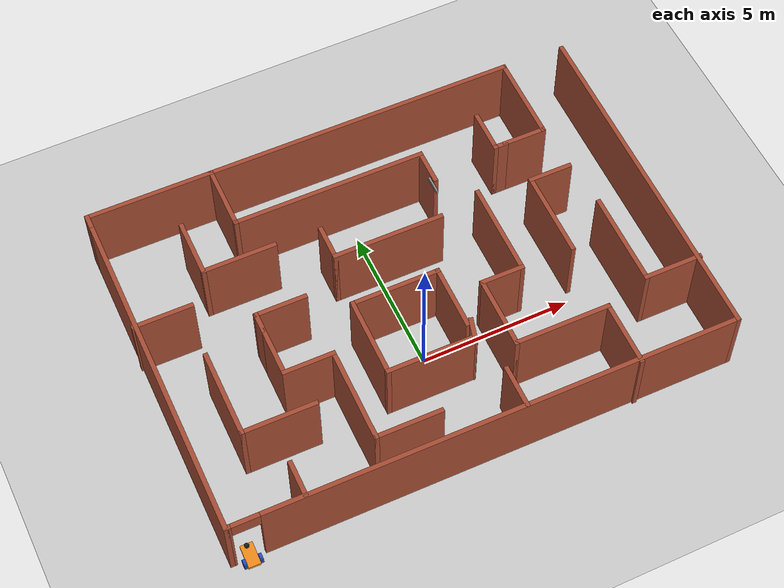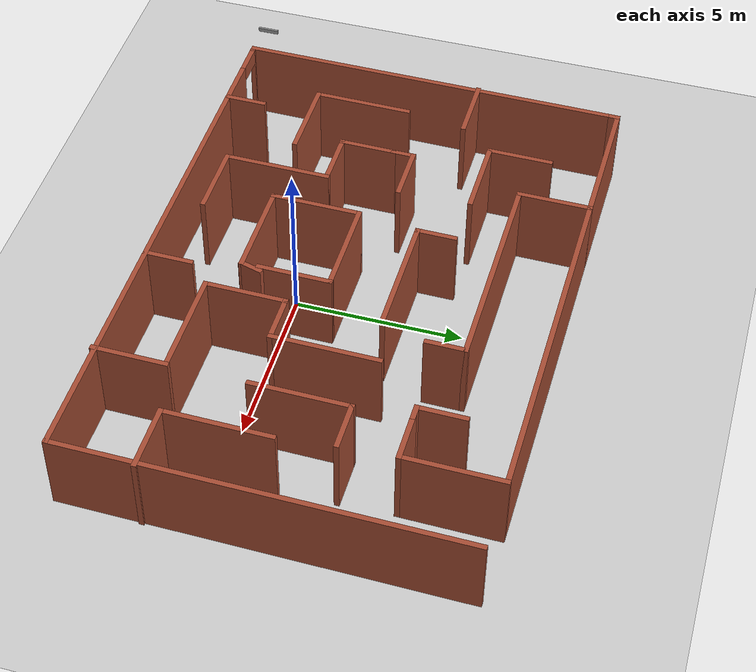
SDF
<sdf version="1.7">
 <world name="default">
  <light name="sun" type="directional">
   <pose>0 0 10 0 -0 0</pose>
   <diffuse>0.8 0.8 0.8 1</diffuse>
   <specular>0.2 0.2 0.2 1</specular>
   <attenuation>
    <range>1000</range>
    <constant>0.9</constant>
    <linear>0.01</linear>
    <quadratic>0.001</quadratic>
   </attenuation>
   <direction>-0.5 0.1 -0.9</direction>
   <spot><inner_angle>0</inner_angle><outer_angle>0</outer_angle><falloff>0</falloff></spot>
  </light>
  <model name="ground_plane">
   <static>1</static>
   <link name="link">
    <collision name="collision">
     <geometry><plane><normal>0 0 1</normal><size>100 100</size></plane></geometry>
     <surface><friction><ode><mu>100</mu><mu2>50</mu2></ode></friction></surface>
    </collision>
    <visual name="visual">
     <cast_shadows>0</cast_shadows>
     <geometry><plane><normal>0 0 1</normal><size>100 100</size></plane></geometry>
     <material>
      <script><uri>file://media/materials/scripts/gazebo.material</uri><name>Gazebo/Grey</name></script>
     </material>
    </visual>
   </link>
  </model>
  <gravity>0 0 -9.8</gravity>
  <magnetic_field>6e-06 2.3e-05 -4.2e-05</magnetic_field>
  <atmosphere type="adiabatic"/>
  <physics type="ode">
   <max_step_size>0.001</max_step_size>
   <real_time_factor>1</real_time_factor>
   <real_time_update_rate>1000</real_time_update_rate>
  </physics>
  <scene><ambient>0.4 0.4 0.4 1</ambient><background>0.7 0.7 0.7 1</background><shadows>1</shadows></scene>
  <audio><device>default</device></audio>
  <spherical_coordinates>
   <surface_model>EARTH_WGS84</surface_model>
   <latitude_deg>0</latitude_deg>
   <longitude_deg>0</longitude_deg>
   <elevation>0</elevation>
   <heading_deg>0</heading_deg>
  </spherical_coordinates>
  <model name="mazebot">
   <link name="base_footprint">
    <inertial>
     <pose>-0.16 0 0.04 0 -0 0</pose>
     <mass>2</mass>
     <inertia>
      <ixx>0.0232</ixx>
      <ixy>0</ixy>
      <ixz>0.0128</ixz>
      <iyy>0.0744</iyy>
      <iyz>0</iyz>
      <izz>0.0712</izz>
     </inertia>
    </inertial>
    <collision name="base_footprint_collision">
     <geometry><box><size>0.75 0.4 0.1</size></box></geometry>
    </collision>
    <collision name="base_footprint_fixed_joint_lump__laser_collision_1">
     <pose>-0.32 0 0.08 0 -0 3.14</pose>
     <geometry><sphere><radius>0.08</radius></sphere></geometry>
    </collision>
    <visual name="base_footprint_visual">
     <geometry><box><size>0.75 0.4 0.1</size></box></geometry>
     <material>
      <script><name>Gazebo/Orange</name><uri>file://media/materials/scripts/gazebo.material</uri></script>
     </material>
    </visual>
    <visual name="base_footprint_fixed_joint_lump__laser_visual_1">
     <pose>-0.32 0 0.08 0 -0 3.14</pose>
     <geometry><cylinder><length>0.05</length><radius>0.05</radius></cylinder></geometry>
    </visual>
    <sensor name="laser" type="ray">
     <visualize>1</visualize>
     <update_rate>40</update_rate>
     <ray>
      <scan>
       <horizontal>
        <samples>720</samples>
        <resolution>1</resolution>
        <min_angle>-1.578</min_angle>
        <max_angle>1.578</max_angle>
       </horizontal>
       <vertical><samples>1</samples><min_angle>0</min_angle><max_angle>0</max_angle></vertical>
      </scan>
      <range><min>0.1</min><max>5</max><resolution>0.1</resolution></range>
     </ray>
     <plugin name="Lidar" filename="libgazebo_ros_laser.so">
      <topicName>/scan</topicName>
      <frameName>laser</frameName>
     </plugin>
     <pose>-0.32 0 0.08 0 -0 3.14</pose>
    </sensor>
   </link>
   <joint name="caster_joint" type="revolute">
    <pose relative_to="base_footprint">-0.3 0 -0.07 0 -0 0</pose>
    <parent>base_footprint</parent>
    <child>caster</child>
    <axis>
     <xyz>0 0 1</xyz>
     <limit><lower>-1e+16</lower><upper>1e+16</upper></limit>
     <dynamics><spring_reference>0</spring_reference><spring_stiffness>0</spring_stiffness></dynamics>
    </axis>
   </joint>
   <link name="caster">
    <pose relative_to="caster_joint">0 0 0 0 -0 0</pose>
    <inertial>
     <mass>1</mass>
     <inertia><ixx>0.01</ixx><ixy>0</ixy><ixz>0</ixz><iyy>0.01</iyy><iyz>0</iyz><izz>0.01</izz></inertia>
    </inertial>
    <collision name="caster_collision"><geometry><sphere><radius>0.08</radius></sphere></geometry></collision>
    <visual name="caster_visual">
     <geometry><sphere><radius>0.08</radius></sphere></geometry>
     <material>
      <script><name>Gazebo/Black</name><uri>file://media/materials/scripts/gazebo.material</uri></script>
     </material>
    </visual>
   </link>
   <joint name="wheel_left_joint" type="revolute">
    <pose relative_to="base_footprint">0.2 -0.25 0 1.57 -0 0</pose>
    <parent>base_footprint</parent>
    <child>wheel_left_link</child>
    <axis>
     <xyz>0 0 1</xyz>
     <limit><lower>-1e+16</lower><upper>1e+16</upper></limit>
     <dynamics><spring_reference>0</spring_reference><spring_stiffness>0</spring_stiffness></dynamics>
    </axis>
   </joint>
   <link name="wheel_left_link">
    <pose relative_to="wheel_left_joint">0 0 0 0 -0 0</pose>
    <inertial>
     <mass>2</mass>
     <inertia><ixx>0.01</ixx><ixy>0</ixy><ixz>0</ixz><iyy>0.01</iyy><iyz>0</iyz><izz>0.01</izz></inertia>
    </inertial>
    <collision name="wheel_left_link_collision">
     <geometry><cylinder><length>0.1</length><radius>0.15</radius></cylinder></geometry>
    </collision>
    <visual name="wheel_left_link_visual">
     <geometry><cylinder><length>0.1</length><radius>0.15</radius></cylinder></geometry>
     <material>
      <script><name>Gazebo/Blue</name><uri>file://media/materials/scripts/gazebo.material</uri></script>
     </material>
    </visual>
   </link>
   <joint name="wheel_right_joint" type="revolute">
    <pose relative_to="base_footprint">0.2 0.25 0 1.57 -0 0</pose>
    <parent>base_footprint</parent>
    <child>wheel_right_link</child>
    <axis>
     <xyz>0 0 1</xyz>
     <limit><lower>-1e+16</lower><upper>1e+16</upper></limit>
     <dynamics><spring_reference>0</spring_reference><spring_stiffness>0</spring_stiffness></dynamics>
    </axis>
   </joint>
   <link name="wheel_right_link">
    <pose relative_to="wheel_right_joint">0 0 0 0 -0 0</pose>
    <inertial>
     <mass>2</mass>
     <inertia><ixx>0.01</ixx><ixy>0</ixy><ixz>0</ixz><iyy>0.01</iyy><iyz>0</iyz><izz>0.01</izz></inertia>
    </inertial>
    <collision name="wheel_right_link_collision">
     <geometry><cylinder><length>0.1</length><radius>0.15</radius></cylinder></geometry>
    </collision>
    <visual name="wheel_right_link_visual">
     <geometry><cylinder><length>0.1</length><radius>0.15</radius></cylinder></geometry>
     <material>
      <script><name>Gazebo/Blue</name><uri>file://media/materials/scripts/gazebo.material</uri></script>
     </material>
    </visual>
   </link>
   <plugin name="differential_drive_controller" filename="libgazebo_ros_diff_drive.so">
    <update_rate>20</update_rate>
    <left_joint>wheel_left_joint</left_joint>
    <right_joint>wheel_right_joint</right_joint>
    <wheel_separation>0.25</wheel_separation>
    <wheel_diameter>0.07</wheel_diameter>
    <wheelAcceleration>1.0</wheelAcceleration>
    <wheelTorque>20</wheelTorque>
    <commandTopic>cmd_vel</commandTopic>
    <odometryTopic>odom</odometryTopic>
    <odometry_frame>odom</odometry_frame>
    <robotBaseFrame>base_footprint</robotBaseFrame>
    <odometrySource>1</odometrySource>
    <publishWheelTF>1</publishWheelTF>
    <publish_odom>1</publish_odom>
    <publish_odom_tf>1</publish_odom_tf>
    <publishWheelJointState>1</publishWheelJointState>
    <legacyMode>0</legacyMode>
   </plugin>
   <static>0</static>
   <plugin name="joint_state_publisher" filename="libgazebo_ros_joint_state_publisher.so">
    <joint_name>caster_joint</joint_name>
    <update_rate>20</update_rate>
   </plugin>
   <pose>-7.45629 -3.85932 0.153865 -3.14159 0.019127 -1.60044</pose>
  </model>
  <model name="_small_maze">
   <pose>0.327791 1.88559 0 0 -0 3.1307</pose>
   <link name="Wall_0">
    <collision name="Wall_0_Collision">
     <geometry><box><size>1.5 0.15 2.5</size></box></geometry>
     <pose>0 0 1.25 0 -0 0</pose>
    </collision>
    <visual name="Wall_0_Visual">
     <pose>0 0 1.25 0 -0 0</pose>
     <geometry><box><size>1.5 0.15 2.5</size></box></geometry>
     <material>
      <script><uri>file://media/materials/scripts/gazebo.material</uri><name>Gazebo/Bricks</name></script>
      <ambient>1 1 1 1</ambient>
     </material>
     <meta><layer>0</layer></meta>
    </visual>
    <pose>-5.51986 -3.02617 0 0 -0 3.14159</pose>
   </link>
   <link name="Wall_10">
    <collision name="Wall_10_Collision">
     <geometry><box><size>11.5 0.15 2.5</size></box></geometry>
     <pose>0 0 1.25 0 -0 0</pose>
    </collision>
    <visual name="Wall_10_Visual">
     <pose>0 0 1.25 0 -0 0</pose>
     <geometry><box><size>11.5 0.15 2.5</size></box></geometry>
     <material>
      <script><uri>file://media/materials/scripts/gazebo.material</uri><name>Gazebo/Bricks</name></script>
      <ambient>1 1 1 1</ambient>
     </material>
     <meta><layer>0</layer></meta>
    </visual>
    <pose>8.30044 0.140261 0 0 -0 -1.5708</pose>
   </link>
   <link name="Wall_11">
    <collision name="Wall_11_Collision">
     <geometry><box><size>0.5 0.15 2.5</size></box></geometry>
     <pose>0 0 1.25 0 -0 0</pose>
    </collision>
    <visual name="Wall_11_Visual">
     <pose>0 0 1.25 0 -0 0</pose>
     <geometry><box><size>0.5 0.15 2.5</size></box></geometry>
     <material>
      <script><uri>file://media/materials/scripts/gazebo.material</uri><name>Gazebo/Bricks</name></script>
      <ambient>1 1 1 1</ambient>
     </material>
     <meta><layer>0</layer></meta>
    </visual>
    <pose>8.30044 -5.70974 0 0 -0 -1.5708</pose>
   </link>
   <link name="Wall_12">
    <collision name="Wall_12_Collision">
     <geometry><box><size>4.29531 0.15 2.5</size></box></geometry>
     <pose>0 0 1.25 0 -0 0</pose>
    </collision>
    <visual name="Wall_12_Visual">
     <pose>0 0 1.25 0 -0 0</pose>
     <geometry><box><size>4.29531 0.15 2.5</size></box></geometry>
     <material>
      <script><uri>file://media/materials/scripts/gazebo.material</uri><name>Gazebo/Bricks</name></script>
      <ambient>1 1 1 1</ambient>
     </material>
     <meta><layer>0</layer></meta>
    </visual>
    <pose>6.22779 -5.88045 0 0 -0 3.13953</pose>
   </link>
   <link name="Wall_14">
    <collision name="Wall_14_Collision">
     <geometry><box><size>2 0.15 2.5</size></box></geometry>
     <pose>0 0 1.25 0 -0 0</pose>
    </collision>
    <visual name="Wall_14_Visual">
     <pose>0 0 1.25 0 -0 0</pose>
     <geometry><box><size>2 0.15 2.5</size></box></geometry>
     <material>
      <script><uri>file://media/materials/scripts/gazebo.material</uri><name>Gazebo/Bricks</name></script>
      <ambient>1 1 1 1</ambient>
     </material>
     <meta><layer>0</layer></meta>
    </visual>
    <pose>-7.43307 3.35202 0 0 -0 3.14159</pose>
   </link>
   <link name="Wall_16">
    <collision name="Wall_16_Collision">
     <geometry><box><size>3.25 0.15 2.5</size></box></geometry>
     <pose>0 0 1.25 0 -0 0</pose>
    </collision>
    <visual name="Wall_16_Visual">
     <pose>0 0 1.25 0 -0 0</pose>
     <geometry><box><size>3.25 0.15 2.5</size></box></geometry>
     <material>
      <script><uri>file://media/materials/scripts/gazebo.material</uri><name>Gazebo/Bricks</name></script>
      <ambient>1 1 1 1</ambient>
     </material>
     <meta><layer>0</layer></meta>
    </visual>
    <pose>-6.50807 1.80202 0 0 -0 -1.5708</pose>
   </link>
   <link name="Wall_18">
    <collision name="Wall_18_Collision">
     <geometry><box><size>1.5 0.15 2.5</size></box></geometry>
     <pose>0 0 1.25 0 -0 0</pose>
    </collision>
    <visual name="Wall_18_Visual">
     <pose>0 0 1.25 0 -0 0</pose>
     <geometry><box><size>1.5 0.15 2.5</size></box></geometry>
     <material>
      <script><uri>file://media/materials/scripts/gazebo.material</uri><name>Gazebo/Bricks</name></script>
      <ambient>1 1 1 1</ambient>
     </material>
     <meta><layer>0</layer></meta>
    </visual>
    <pose>-5.622 -1.39711 0 0 -0 0</pose>
   </link>
   <link name="Wall_19">
    <collision name="Wall_19_Collision">
     <geometry><box><size>3 0.15 2.5</size></box></geometry>
     <pose>0 0 1.25 0 -0 0</pose>
    </collision>
    <visual name="Wall_19_Visual">
     <pose>0 0 1.25 0 -0 0</pose>
     <geometry><box><size>3 0.15 2.5</size></box></geometry>
     <material>
      <script><uri>file://media/materials/scripts/gazebo.material</uri><name>Gazebo/Bricks</name></script>
      <ambient>1 1 1 1</ambient>
     </material>
     <meta><layer>0</layer></meta>
    </visual>
    <pose>-4.947 0.02789 0 0 -0 1.5708</pose>
   </link>
   <link name="Wall_2">
    <collision name="Wall_2_Collision">
     <geometry><box><size>3 0.15 2.5</size></box></geometry>
     <pose>0 0 1.25 0 -0 0</pose>
    </collision>
    <visual name="Wall_2_Visual">
     <pose>0 0 1.25 0 -0 0</pose>
     <geometry><box><size>3 0.15 2.5</size></box></geometry>
     <material>
      <script><uri>file://media/materials/scripts/gazebo.material</uri><name>Gazebo/Bricks</name></script>
      <ambient>1 1 1 1</ambient>
     </material>
     <meta><layer>0</layer></meta>
    </visual>
    <pose>-6.19486 -4.45117 0 0 -0 -1.5708</pose>
   </link>
   <link name="Wall_21">
    <collision name="Wall_21_Collision">
     <geometry><box><size>2.25 0.15 2.5</size></box></geometry>
     <pose>0 0 1.25 0 -0 0</pose>
    </collision>
    <visual name="Wall_21_Visual">
     <pose>0 0 1.25 0 -0 0</pose>
     <geometry><box><size>2.25 0.15 2.5</size></box></geometry>
     <material>
      <script><uri>file://media/materials/scripts/gazebo.material</uri><name>Gazebo/Bricks</name></script>
      <ambient>1 1 1 1</ambient>
     </material>
     <meta><layer>0</layer></meta>
    </visual>
    <pose>-4.96021 4.83489 0 0 -0 -1.5708</pose>
   </link>
   <link name="Wall_22">
    <collision name="Wall_22_Collision">
     <geometry><box><size>3.25 0.15 2.5</size></box></geometry>
     <pose>0 0 1.25 0 -0 0</pose>
    </collision>
    <visual name="Wall_22_Visual">
     <pose>0 0 1.25 0 -0 0</pose>
     <geometry><box><size>3.25 0.15 2.5</size></box></geometry>
     <material>
      <script><uri>file://media/materials/scripts/gazebo.material</uri><name>Gazebo/Bricks</name></script>
      <ambient>1 1 1 1</ambient>
     </material>
     <meta><layer>0</layer></meta>
    </visual>
    <pose>-3.41021 3.78489 0 0 -0 0</pose>
   </link>
   <link name="Wall_23">
    <collision name="Wall_23_Collision">
     <geometry><box><size>2.5 0.15 2.5</size></box></geometry>
     <pose>0 0 1.25 0 -0 0</pose>
    </collision>
    <visual name="Wall_23_Visual">
     <pose>0 0 1.25 0 -0 0</pose>
     <geometry><box><size>2.5 0.15 2.5</size></box></geometry>
     <material>
      <script><uri>file://media/materials/scripts/gazebo.material</uri><name>Gazebo/Bricks</name></script>
      <ambient>1 1 1 1</ambient>
     </material>
     <meta><layer>0</layer></meta>
    </visual>
    <pose>-1.86021 2.60989 0 0 -0 -1.5708</pose>
   </link>
   <link name="Wall_24">
    <collision name="Wall_24_Collision">
     <geometry><box><size>1.5 0.15 2.5</size></box></geometry>
     <pose>0 0 1.25 0 -0 0</pose>
    </collision>
    <visual name="Wall_24_Visual">
     <pose>0 0 1.25 0 -0 0</pose>
     <geometry><box><size>1.5 0.15 2.5</size></box></geometry>
     <material>
      <script><uri>file://media/materials/scripts/gazebo.material</uri><name>Gazebo/Bricks</name></script>
      <ambient>1 1 1 1</ambient>
     </material>
     <meta><layer>0</layer></meta>
    </visual>
    <pose>-2.53521 1.43489 0 0 -0 3.14159</pose>
   </link>
   <link name="Wall_25">
    <collision name="Wall_25_Collision">
     <geometry><box><size>3.25 0.15 2.5</size></box></geometry>
     <pose>0 0 1.25 0 -0 0</pose>
    </collision>
    <visual name="Wall_25_Visual">
     <pose>0 0 1.25 0 -0 0</pose>
     <geometry><box><size>3.25 0.15 2.5</size></box></geometry>
     <material>
      <script><uri>file://media/materials/scripts/gazebo.material</uri><name>Gazebo/Bricks</name></script>
      <ambient>1 1 1 1</ambient>
     </material>
     <meta><layer>0</layer></meta>
    </visual>
    <pose>-3.21021 -0.115106 0 0 -0 -1.5708</pose>
   </link>
   <link name="Wall_27">
    <collision name="Wall_27_Collision">
     <geometry><box><size>3.75 0.15 2.5</size></box></geometry>
     <pose>0 0 1.25 0 -0 0</pose>
    </collision>
    <visual name="Wall_27_Visual">
     <pose>0 0 1.25 0 -0 0</pose>
     <geometry><box><size>3.75 0.15 2.5</size></box></geometry>
     <material>
      <script><uri>file://media/materials/scripts/gazebo.material</uri><name>Gazebo/Bricks</name></script>
      <ambient>1 1 1 1</ambient>
     </material>
     <meta><layer>0</layer></meta>
    </visual>
    <pose>0.041062 -1.32675 0 0 -0 0</pose>
   </link>
   <link name="Wall_28">
    <collision name="Wall_28_Collision">
     <geometry><box><size>1.25 0.15 2.5</size></box></geometry>
     <pose>0 0 1.25 0 -0 0</pose>
    </collision>
    <visual name="Wall_28_Visual">
     <pose>0 0 1.25 0 -0 0</pose>
     <geometry><box><size>1.25 0.15 2.5</size></box></geometry>
     <material>
      <script><uri>file://media/materials/scripts/gazebo.material</uri><name>Gazebo/Bricks</name></script>
      <ambient>1 1 1 1</ambient>
     </material>
     <meta><layer>0</layer></meta>
    </visual>
    <pose>1.84106 -1.87675 0 0 -0 -1.5708</pose>
   </link>
   <link name="Wall_3">
    <collision name="Wall_3_Collision">
     <geometry><box><size>10.5 0.15 2.5</size></box></geometry>
     <pose>0 0 1.25 0 -0 0</pose>
    </collision>
    <visual name="Wall_3_Visual">
     <pose>0 0 1.25 0 -0 0</pose>
     <geometry><box><size>10.5 0.15 2.5</size></box></geometry>
     <material>
      <script><uri>file://media/materials/scripts/gazebo.material</uri><name>Gazebo/Bricks</name></script>
      <ambient>1 1 1 1</ambient>
     </material>
     <meta><layer>0</layer></meta>
    </visual>
    <pose>-1.01986 -5.87617 0 0 -0 0</pose>
   </link>
   <link name="Wall_30">
    <collision name="Wall_30_Collision">
     <geometry><box><size>2 0.15 2.5</size></box></geometry>
     <pose>0 0 1.25 0 -0 0</pose>
    </collision>
    <visual name="Wall_30_Visual">
     <pose>0 0 1.25 0 -0 0</pose>
     <geometry><box><size>2 0.15 2.5</size></box></geometry>
     <material>
      <script><uri>file://media/materials/scripts/gazebo.material</uri><name>Gazebo/Bricks</name></script>
      <ambient>1 1 1 1</ambient>
     </material>
     <meta><layer>0</layer></meta>
    </visual>
    <pose>5.73414 -3.42713 0 0 -0 1.5708</pose>
   </link>
   <link name="Wall_31">
    <collision name="Wall_31_Collision">
     <geometry><box><size>2.5 0.15 2.5</size></box></geometry>
     <pose>0 0 1.25 0 -0 0</pose>
    </collision>
    <visual name="Wall_31_Visual">
     <pose>0 0 1.25 0 -0 0</pose>
     <geometry><box><size>2.5 0.15 2.5</size></box></geometry>
     <material>
      <script><uri>file://media/materials/scripts/gazebo.material</uri><name>Gazebo/Bricks</name></script>
      <ambient>1 1 1 1</ambient>
     </material>
     <meta><layer>0</layer></meta>
    </visual>
    <pose>4.55914 -2.50213 0 0 -0 3.14159</pose>
   </link>
   <link name="Wall_33">
    <collision name="Wall_33_Collision">
     <geometry><box><size>2.25 0.15 2.5</size></box></geometry>
     <pose>0 0 1.25 0 -0 0</pose>
    </collision>
    <visual name="Wall_33_Visual">
     <pose>0 0 1.25 0 -0 0</pose>
     <geometry><box><size>2.25 0.15 2.5</size></box></geometry>
     <material>
      <script><uri>file://media/materials/scripts/gazebo.material</uri><name>Gazebo/Bricks</name></script>
      <ambient>1 1 1 1</ambient>
     </material>
     <meta><layer>0</layer></meta>
    </visual>
    <pose>-0.809112 1.52809 0 0 -0 -1.5708</pose>
   </link>
   <link name="Wall_34">
    <collision name="Wall_34_Collision">
     <geometry><box><size>3 0.15 2.5</size></box></geometry>
     <pose>0 0 1.25 0 -0 0</pose>
    </collision>
    <visual name="Wall_34_Visual">
     <pose>0 0 1.25 0 -0 0</pose>
     <geometry><box><size>3 0.15 2.5</size></box></geometry>
     <material>
      <script><uri>file://media/materials/scripts/gazebo.material</uri><name>Gazebo/Bricks</name></script>
      <ambient>1 1 1 1</ambient>
     </material>
     <meta><layer>0</layer></meta>
    </visual>
    <pose>0.615888 0.47809 0 0 -0 0</pose>
   </link>
   <link name="Wall_35">
    <collision name="Wall_35_Collision">
     <geometry><box><size>2.75 0.15 2.5</size></box></geometry>
     <pose>0 0 1.25 0 -0 0</pose>
    </collision>
    <visual name="Wall_35_Visual">
     <pose>0 0 1.25 0 -0 0</pose>
     <geometry><box><size>2.75 0.15 2.5</size></box></geometry>
     <material>
      <script><uri>file://media/materials/scripts/gazebo.material</uri><name>Gazebo/Bricks</name></script>
      <ambient>1 1 1 1</ambient>
     </material>
     <meta><layer>0</layer></meta>
    </visual>
    <pose>2.04089 1.77809 0 0 -0 1.5708</pose>
   </link>
   <link name="Wall_36">
    <collision name="Wall_36_Collision">
     <geometry><box><size>3 0.15 2.5</size></box></geometry>
     <pose>0 0 1.25 0 -0 0</pose>
    </collision>
    <visual name="Wall_36_Visual">
     <pose>0 0 1.25 0 -0 0</pose>
     <geometry><box><size>3 0.15 2.5</size></box></geometry>
     <material>
      <script><uri>file://media/materials/scripts/gazebo.material</uri><name>Gazebo/Bricks</name></script>
      <ambient>1 1 1 1</ambient>
     </material>
     <meta><layer>0</layer></meta>
    </visual>
    <pose>0.615888 3.07809 0 0 -0 3.14159</pose>
   </link>
   <link name="Wall_37">
    <collision name="Wall_37_Collision">
     <geometry><box><size>0.75 0.15 2.5</size></box></geometry>
     <pose>0 0 1.25 0 -0 0</pose>
    </collision>
    <visual name="Wall_37_Visual">
     <pose>0 0 1.25 0 -0 0</pose>
     <geometry><box><size>0.75 0.15 2.5</size></box></geometry>
     <material>
      <script><uri>file://media/materials/scripts/gazebo.material</uri><name>Gazebo/Bricks</name></script>
      <ambient>1 1 1 1</ambient>
     </material>
     <meta><layer>0</layer></meta>
    </visual>
    <pose>-0.886757 2.78831 0 0 -0 -1.8326</pose>
   </link>
   <link name="Wall_39">
    <collision name="Wall_39_Collision">
     <geometry><box><size>2.25 0.15 2.5</size></box></geometry>
     <pose>0 0 1.25 0 -0 0</pose>
    </collision>
    <visual name="Wall_39_Visual">
     <pose>0 0 1.25 0 -0 0</pose>
     <geometry><box><size>2.25 0.15 2.5</size></box></geometry>
     <material>
      <script><uri>file://media/materials/scripts/gazebo.material</uri><name>Gazebo/Bricks</name></script>
      <ambient>1 1 1 1</ambient>
     </material>
     <meta><layer>0</layer></meta>
    </visual>
    <pose>2.2109 4.93507 0 0 -0 0</pose>
   </link>
   <link name="Wall_4">
    <collision name="Wall_4_Collision">
     <geometry><box><size>2.25 0.15 2.5</size></box></geometry>
     <pose>0 0 1.25 0 -0 0</pose>
    </collision>
    <visual name="Wall_4_Visual">
     <pose>0 0 1.25 0 -0 0</pose>
     <geometry><box><size>2.25 0.15 2.5</size></box></geometry>
     <material>
      <script><uri>file://media/materials/scripts/gazebo.material</uri><name>Gazebo/Bricks</name></script>
      <ambient>1 1 1 1</ambient>
     </material>
     <meta><layer>0</layer></meta>
    </visual>
    <pose>4.15514 -4.82617 0 0 -0 1.5708</pose>
   </link>
   <link name="Wall_40">
    <collision name="Wall_40_Collision">
     <geometry><box><size>3.25 0.15 2.5</size></box></geometry>
     <pose>0 0 1.25 0 -0 0</pose>
    </collision>
    <visual name="Wall_40_Visual">
     <pose>0 0 1.25 0 -0 0</pose>
     <geometry><box><size>3.25 0.15 2.5</size></box></geometry>
     <material>
      <script><uri>file://media/materials/scripts/gazebo.material</uri><name>Gazebo/Bricks</name></script>
      <ambient>1 1 1 1</ambient>
     </material>
     <meta><layer>0</layer></meta>
    </visual>
    <pose>3.2609 3.38507 0 0 -0 -1.5708</pose>
   </link>
   <link name="Wall_41">
    <collision name="Wall_41_Collision">
     <geometry><box><size>1.75 0.15 2.5</size></box></geometry>
     <pose>0 0 1.25 0 -0 0</pose>
    </collision>
    <visual name="Wall_41_Visual">
     <pose>0 0 1.25 0 -0 0</pose>
     <geometry><box><size>1.75 0.15 2.5</size></box></geometry>
     <material>
      <script><uri>file://media/materials/scripts/gazebo.material</uri><name>Gazebo/Bricks</name></script>
      <ambient>1 1 1 1</ambient>
     </material>
     <meta><layer>0</layer></meta>
    </visual>
    <pose>4.0609 1.83507 0 0 -0 0</pose>
   </link>
   <link name="Wall_42">
    <collision name="Wall_42_Collision">
     <geometry><box><size>1.75 0.15 2.5</size></box></geometry>
     <pose>0 0 1.25 0 -0 0</pose>
    </collision>
    <visual name="Wall_42_Visual">
     <pose>0 0 1.25 0 -0 0</pose>
     <geometry><box><size>1.75 0.15 2.5</size></box></geometry>
     <material>
      <script><uri>file://media/materials/scripts/gazebo.material</uri><name>Gazebo/Bricks</name></script>
      <ambient>1 1 1 1</ambient>
     </material>
     <meta><layer>0</layer></meta>
    </visual>
    <pose>4.8609 1.03507 0 0 -0 -1.5708</pose>
   </link>
   <link name="Wall_43">
    <collision name="Wall_43_Collision">
     <geometry><box><size>0.75 0.15 2.5</size></box></geometry>
     <pose>0 0 1.25 0 -0 0</pose>
    </collision>
    <visual name="Wall_43_Visual">
     <pose>0 0 1.25 0 -0 0</pose>
     <geometry><box><size>0.75 0.15 2.5</size></box></geometry>
     <material>
      <script><uri>file://media/materials/scripts/gazebo.material</uri><name>Gazebo/Bricks</name></script>
      <ambient>1 1 1 1</ambient>
     </material>
     <meta><layer>0</layer></meta>
    </visual>
    <pose>4.8609 -0.064933 0 0 -0 -1.5708</pose>
   </link>
   <link name="Wall_44">
    <collision name="Wall_44_Collision">
     <geometry><box><size>1.75 0.15 2.5</size></box></geometry>
     <pose>0 0 1.25 0 -0 0</pose>
    </collision>
    <visual name="Wall_44_Visual">
     <pose>0 0 1.25 0 -0 0</pose>
     <geometry><box><size>1.75 0.15 2.5</size></box></geometry>
     <material>
      <script><uri>file://media/materials/scripts/gazebo.material</uri><name>Gazebo/Bricks</name></script>
      <ambient>1 1 1 1</ambient>
     </material>
     <meta><layer>0</layer></meta>
    </visual>
    <pose>4.0609 -0.364933 0 0 -0 3.14159</pose>
   </link>
   <link name="Wall_46">
    <collision name="Wall_46_Collision">
     <geometry><box><size>2.5 0.15 2.5</size></box></geometry>
     <pose>0 0 1.25 0 -0 0</pose>
    </collision>
    <visual name="Wall_46_Visual">
     <pose>0 0 1.25 0 -0 0</pose>
     <geometry><box><size>2.5 0.15 2.5</size></box></geometry>
     <material>
      <script><uri>file://media/materials/scripts/gazebo.material</uri><name>Gazebo/Bricks</name></script>
      <ambient>1 1 1 1</ambient>
     </material>
     <meta><layer>0</layer></meta>
    </visual>
    <pose>5.57235 3.17613 0 0 -0 0</pose>
   </link>
   <link name="Wall_47">
    <collision name="Wall_47_Collision">
     <geometry><box><size>3 0.15 2.5</size></box></geometry>
     <pose>0 0 1.25 0 -0 0</pose>
    </collision>
    <visual name="Wall_47_Visual">
     <pose>0 0 1.25 0 -0 0</pose>
     <geometry><box><size>3 0.15 2.5</size></box></geometry>
     <material>
      <script><uri>file://media/materials/scripts/gazebo.material</uri><name>Gazebo/Bricks</name></script>
      <ambient>1 1 1 1</ambient>
     </material>
     <meta><layer>0</layer></meta>
    </visual>
    <pose>6.74735 1.75113 0 0 -0 -1.5708</pose>
   </link>
   <link name="Wall_49">
    <collision name="Wall_49_Collision">
     <geometry><box><size>1.25 0.15 2.5</size></box></geometry>
     <pose>0 0 1.25 0 -0 0</pose>
    </collision>
    <visual name="Wall_49_Visual">
     <pose>0 0 1.25 0 -0 0</pose>
     <geometry><box><size>1.25 0.15 2.5</size></box></geometry>
     <material>
      <script><uri>file://media/materials/scripts/gazebo.material</uri><name>Gazebo/Bricks</name></script>
      <ambient>1 1 1 1</ambient>
     </material>
     <meta><layer>0</layer></meta>
    </visual>
    <pose>5.83967 5.22936 0 0 -0 -1.5708</pose>
   </link>
   <link name="Wall_5">
    <collision name="Wall_5_Collision">
     <geometry><box><size>6.5 0.15 2.5</size></box></geometry>
     <pose>0 0 1.25 0 -0 0</pose>
    </collision>
    <visual name="Wall_5_Visual">
     <pose>0 0 1.25 0 -0 0</pose>
     <geometry><box><size>6.5 0.15 2.5</size></box></geometry>
     <material>
      <script><uri>file://media/materials/scripts/gazebo.material</uri><name>Gazebo/Bricks</name></script>
      <ambient>1 1 1 1</ambient>
     </material>
     <meta><layer>0</layer></meta>
    </visual>
    <pose>0.980142 -3.77617 0 0 -0 3.14159</pose>
   </link>
   <link name="Wall_51">
    <collision name="Wall_51_Collision">
     <geometry><box><size>1.5 0.15 2.5</size></box></geometry>
     <pose>0 0 1.25 0 -0 0</pose>
    </collision>
    <visual name="Wall_51_Visual">
     <pose>0 0 1.25 0 -0 0</pose>
     <geometry><box><size>1.5 0.15 2.5</size></box></geometry>
     <material>
      <script><uri>file://media/materials/scripts/gazebo.material</uri><name>Gazebo/Bricks</name></script>
      <ambient>1 1 1 1</ambient>
     </material>
     <meta><layer>0</layer></meta>
    </visual>
    <pose>-1.19608 5.13954 0 0 -0 -1.5708</pose>
   </link>
   <link name="Wall_53">
    <collision name="Wall_53_Collision">
     <geometry><box><size>2 0.15 2.5</size></box></geometry>
     <pose>0 0 1.25 0 -0 0</pose>
    </collision>
    <visual name="Wall_53_Visual">
     <pose>0 0 1.25 0 -0 0</pose>
     <geometry><box><size>2 0.15 2.5</size></box></geometry>
     <material>
      <script><uri>file://media/materials/scripts/gazebo.material</uri><name>Gazebo/Bricks</name></script>
      <ambient>1 1 1 1</ambient>
     </material>
     <meta><layer>0</layer></meta>
    </visual>
    <pose>7.43307 -1.50265 0 0 -0 0</pose>
   </link>
   <link name="Wall_55">
    <collision name="Wall_55_Collision">
     <geometry><box><size>0.5 0.15 2.5</size></box></geometry>
     <pose>0 0 1.25 0 -0 0</pose>
    </collision>
    <visual name="Wall_55_Visual">
     <pose>0 0 1.25 0 -0 0</pose>
     <geometry><box><size>0.5 0.15 2.5</size></box></geometry>
     <material>
      <script><uri>file://media/materials/scripts/gazebo.material</uri><name>Gazebo/Bricks</name></script>
      <ambient>1 1 1 1</ambient>
     </material>
     <meta><layer>0</layer></meta>
    </visual>
    <pose>-4.66986 -3.02617 0 0 -0 0</pose>
   </link>
   <link name="Wall_56">
    <collision name="Wall_56_Collision">
     <geometry><box><size>1.5 0.15 2.5</size></box></geometry>
     <pose>0 0 1.25 0 -0 0</pose>
    </collision>
    <visual name="Wall_56_Visual">
     <pose>0 0 1.25 0 -0 0</pose>
     <geometry><box><size>1.5 0.15 2.5</size></box></geometry>
     <material>
      <script><uri>file://media/materials/scripts/gazebo.material</uri><name>Gazebo/Bricks</name></script>
      <ambient>1 1 1 1</ambient>
     </material>
     <meta><layer>0</layer></meta>
    </visual>
    <pose>-4.49486 -3.70117 0 0 -0 -1.5708</pose>
   </link>
   <link name="Wall_6">
    <collision name="Wall_6_Collision">
     <geometry><box><size>1.25 0.15 2.5</size></box></geometry>
     <pose>0 0 1.25 0 -0 0</pose>
    </collision>
    <visual name="Wall_6_Visual">
     <pose>0 0 1.25 0 -0 0</pose>
     <geometry><box><size>1.25 0.15 2.5</size></box></geometry>
     <material>
      <script><uri>file://media/materials/scripts/gazebo.material</uri><name>Gazebo/Bricks</name></script>
      <ambient>1 1 1 1</ambient>
     </material>
     <meta><layer>0</layer></meta>
    </visual>
    <pose>-2.19486 -3.22617 0 0 -0 1.5708</pose>
   </link>
   <link name="Wall_8">
    <collision name="Wall_8_Collision">
     <geometry><box><size>11.75 0.15 2.5</size></box></geometry>
     <pose>0 0 1.25 0 -0 0</pose>
    </collision>
    <visual name="Wall_8_Visual">
     <pose>0 0 1.25 0 -0 0</pose>
     <geometry><box><size>11.75 0.15 2.5</size></box></geometry>
     <material>
      <script><uri>file://media/materials/scripts/gazebo.material</uri><name>Gazebo/Bricks</name></script>
      <ambient>1 1 1 1</ambient>
     </material>
     <meta><layer>0</layer></meta>
    </visual>
    <pose>-8.29956 0.015261 0 0 -0 1.5708</pose>
   </link>
   <link name="Wall_9">
    <pose>0.000442 5.81526 0 0 -0 0</pose>
    <visual name="Wall_9_Visual_0">
     <pose>-0.560646 0 1.25 0 -0 0</pose>
     <geometry><box><size>15.6287 0.15 2.5</size></box></geometry>
     <material>
      <script><uri>file://media/materials/scripts/gazebo.material</uri><name>Gazebo/Bricks</name></script>
      <ambient>1 1 1 1</ambient>
     </material>
     <meta><layer>0</layer></meta>
    </visual>
    <collision name="Wall_9_Collision_0">
     <geometry><box><size>15.6287 0.15 2.5</size></box></geometry>
     <pose>-0.560646 0 1.25 0 -0 0</pose>
    </collision>
    <visual name="Wall_9_Visual_1">
     <pose>8.26435 0 1.25 0 -0 0</pose>
     <geometry><box><size>0.221293 0.15 2.5</size></box></geometry>
     <material>
      <script><uri>file://media/materials/scripts/gazebo.material</uri><name>Gazebo/Bricks</name></script>
      <ambient>1 1 1 1</ambient>
     </material>
     <meta><layer>0</layer></meta>
    </visual>
    <collision name="Wall_9_Collision_1">
     <geometry><box><size>0.221293 0.15 2.5</size></box></geometry>
     <pose>8.26435 0 1.25 0 -0 0</pose>
    </collision>
    <visual name="Wall_9_Visual_2">
     <pose>7.70371 0 2.25 0 -0 0</pose>
     <geometry><box><size>0.9 0.15 0.5</size></box></geometry>
     <material>
      <script><uri>file://media/materials/scripts/gazebo.material</uri><name>Gazebo/Bricks</name></script>
      <ambient>1 1 1 1</ambient>
     </material>
     <meta><layer>0</layer></meta>
    </visual>
    <collision name="Wall_9_Collision_2">
     <geometry><box><size>0.9 0.15 0.5</size></box></geometry>
     <pose>7.70371 0 2.25 0 -0 0</pose>
    </collision>
   </link>
   <static>1</static>
  </model>
  <model name="camera">
   <link name="link">
    <inertial>
     <mass>1</mass>
     <inertia>
      <ixx>0.166667</ixx>
      <ixy>0</ixy>
      <ixz>0</ixz>
      <iyy>0.166667</iyy>
      <iyz>0</iyz>
      <izz>0.166667</izz>
     </inertia>
    </inertial>
    <gravity>0</gravity>
    <visual name="visual">
     <geometry><box><size>0.05 0.5 0.1</size></box></geometry>
     <material>
      <script><name>Gazebo/Grey</name><uri>file://media/materials/scripts/gazebo.material</uri></script>
      <shader type="pixel"><normal_map>__default__</normal_map></shader>
      <ambient>0.3 0.3 0.3 1</ambient>
      <diffuse>0.7 0.7 0.7 1</diffuse>
      <specular>0.01 0.01 0.01 1</specular>
      <emissive>0 0 0 1</emissive>
     </material>
    </visual>
    <collision name="collision">
     <geometry><box><size>1 1 1</size></box></geometry>
     <surface>
      <friction>
       <ode><mu>1</mu><mu2>1</mu2><fdir1>0 0 0</fdir1><slip1>0</slip1><slip2>0</slip2></ode>
       <torsional>
        <coefficient>1</coefficient>
        <patch_radius>0</patch_radius>
        <surface_radius>0</surface_radius>
        <use_patch_radius>1</use_patch_radius>
        <ode><slip>0</slip></ode>
       </torsional>
      </friction>
      <bounce><restitution_coefficient>0</restitution_coefficient><threshold>1e+06</threshold></bounce>
      <contact>
       <collide_without_contact>0</collide_without_contact>
       <collide_without_contact_bitmask>1</collide_without_contact_bitmask>
       <collide_bitmask>1</collide_bitmask>
       <ode>
        <soft_cfm>0</soft_cfm>
        <soft_erp>0.2</soft_erp>
        <kp>1e+13</kp>
        <kd>1</kd>
        <max_vel>0.01</max_vel>
        <min_depth>0</min_depth>
       </ode>
       <bullet>
        <split_impulse>1</split_impulse>
        <split_impulse_penetration_threshold>-0.01</split_impulse_penetration_threshold>
        <soft_cfm>0</soft_cfm>
        <soft_erp>0.2</soft_erp>
        <kp>1e+13</kp>
        <kd>1</kd>
       </bullet>
      </contact>
     </surface>
    </collision>
   </link>
   <static>0</static>
   <pose>-0.032216 -0.490665 10.0165 0 -0 0</pose>
  </model>
 </world>
</sdf>
